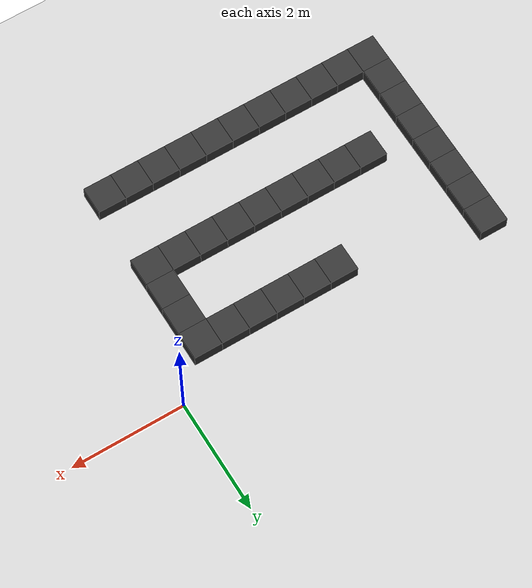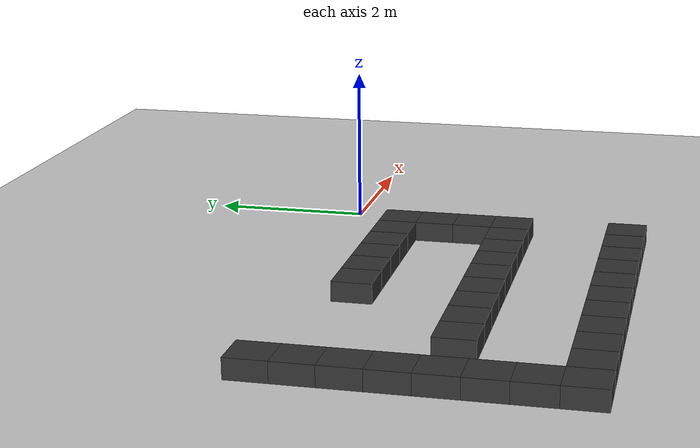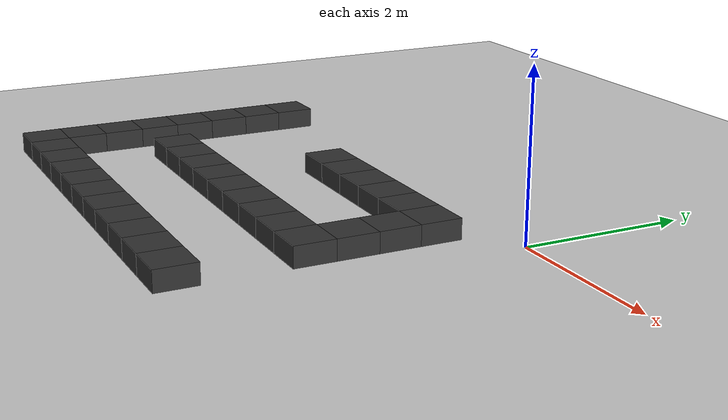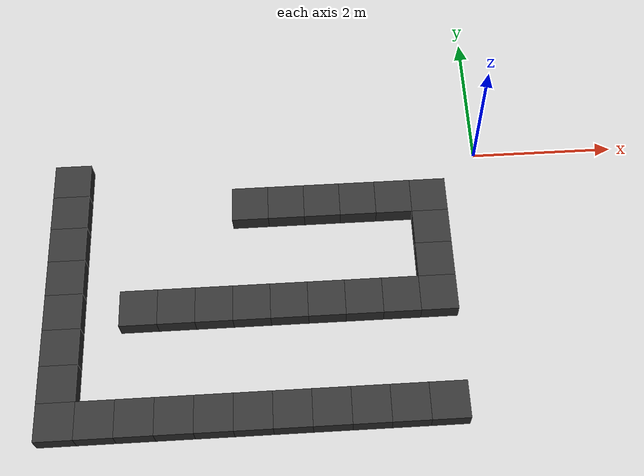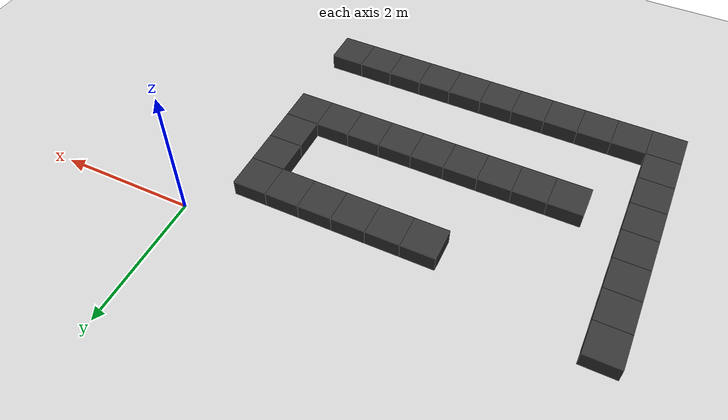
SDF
<sdf version="1.7">
 <world name="default">
  <model name="ground">
   <static>true</static>
   <link name="link">
    <collision name="col">
     <geometry><plane><normal>0 0 1</normal><size>200 200</size></plane></geometry>
    </collision>
    <visual name="vis">
     <geometry><plane><normal>0 0 1</normal><size>200 200</size></plane></geometry>
     <material>
      <ambient>0.25 0.25 0.25 1</ambient>
      <diffuse>0.80 0.80 0.80 1</diffuse>
      <specular>0.05 0.05 0.05 1</specular>
     </material>
    </visual>
   </link>
  </model>
  <model name="w_0_0">
   <static>true</static>
   <pose>-5.750 -3.750 0.125 0 0 0</pose>
   <link name="link">
    <collision name="col"><geometry><box><size>0.500 0.500 0.250</size></box></geometry></collision>
    <visual name="vis">
     <geometry><box><size>0.500 0.500 0.250</size></box></geometry>
     <material><ambient>0.2 0.2 0.2 1.0</ambient></material>
    </visual>
   </link>
  </model>
  <model name="w_0_1">
   <static>true</static>
   <pose>-5.250 -3.750 0.125 0 0 0</pose>
   <link name="link">
    <collision name="col"><geometry><box><size>0.500 0.500 0.250</size></box></geometry></collision>
    <visual name="vis">
     <geometry><box><size>0.500 0.500 0.250</size></box></geometry>
     <material><ambient>0.2 0.2 0.2 1.0</ambient></material>
    </visual>
   </link>
  </model>
  <model name="w_0_2">
   <static>true</static>
   <pose>-4.750 -3.750 0.125 0 0 0</pose>
   <link name="link">
    <collision name="col"><geometry><box><size>0.500 0.500 0.250</size></box></geometry></collision>
    <visual name="vis">
     <geometry><box><size>0.500 0.500 0.250</size></box></geometry>
     <material><ambient>0.2 0.2 0.2 1.0</ambient></material>
    </visual>
   </link>
  </model>
  <model name="w_0_3">
   <static>true</static>
   <pose>-4.250 -3.750 0.125 0 0 0</pose>
   <link name="link">
    <collision name="col"><geometry><box><size>0.500 0.500 0.250</size></box></geometry></collision>
    <visual name="vis">
     <geometry><box><size>0.500 0.500 0.250</size></box></geometry>
     <material><ambient>0.2 0.2 0.2 1.0</ambient></material>
    </visual>
   </link>
  </model>
  <model name="w_0_4">
   <static>true</static>
   <pose>-3.750 -3.750 0.125 0 0 0</pose>
   <link name="link">
    <collision name="col"><geometry><box><size>0.500 0.500 0.250</size></box></geometry></collision>
    <visual name="vis">
     <geometry><box><size>0.500 0.500 0.250</size></box></geometry>
     <material><ambient>0.2 0.2 0.2 1.0</ambient></material>
    </visual>
   </link>
  </model>
  <model name="w_0_5">
   <static>true</static>
   <pose>-3.250 -3.750 0.125 0 0 0</pose>
   <link name="link">
    <collision name="col"><geometry><box><size>0.500 0.500 0.250</size></box></geometry></collision>
    <visual name="vis">
     <geometry><box><size>0.500 0.500 0.250</size></box></geometry>
     <material><ambient>0.2 0.2 0.2 1.0</ambient></material>
    </visual>
   </link>
  </model>
  <model name="w_0_6">
   <static>true</static>
   <pose>-2.750 -3.750 0.125 0 0 0</pose>
   <link name="link">
    <collision name="col"><geometry><box><size>0.500 0.500 0.250</size></box></geometry></collision>
    <visual name="vis">
     <geometry><box><size>0.500 0.500 0.250</size></box></geometry>
     <material><ambient>0.2 0.2 0.2 1.0</ambient></material>
    </visual>
   </link>
  </model>
  <model name="w_0_7">
   <static>true</static>
   <pose>-2.250 -3.750 0.125 0 0 0</pose>
   <link name="link">
    <collision name="col"><geometry><box><size>0.500 0.500 0.250</size></box></geometry></collision>
    <visual name="vis">
     <geometry><box><size>0.500 0.500 0.250</size></box></geometry>
     <material><ambient>0.2 0.2 0.2 1.0</ambient></material>
    </visual>
   </link>
  </model>
  <model name="w_0_8">
   <static>true</static>
   <pose>-1.750 -3.750 0.125 0 0 0</pose>
   <link name="link">
    <collision name="col"><geometry><box><size>0.500 0.500 0.250</size></box></geometry></collision>
    <visual name="vis">
     <geometry><box><size>0.500 0.500 0.250</size></box></geometry>
     <material><ambient>0.2 0.2 0.2 1.0</ambient></material>
    </visual>
   </link>
  </model>
  <model name="w_0_9">
   <static>true</static>
   <pose>-1.250 -3.750 0.125 0 0 0</pose>
   <link name="link">
    <collision name="col"><geometry><box><size>0.500 0.500 0.250</size></box></geometry></collision>
    <visual name="vis">
     <geometry><box><size>0.500 0.500 0.250</size></box></geometry>
     <material><ambient>0.2 0.2 0.2 1.0</ambient></material>
    </visual>
   </link>
  </model>
  <model name="w_0_10">
   <static>true</static>
   <pose>-0.750 -3.750 0.125 0 0 0</pose>
   <link name="link">
    <collision name="col"><geometry><box><size>0.500 0.500 0.250</size></box></geometry></collision>
    <visual name="vis">
     <geometry><box><size>0.500 0.500 0.250</size></box></geometry>
     <material><ambient>0.2 0.2 0.2 1.0</ambient></material>
    </visual>
   </link>
  </model>
  <model name="w_1_0">
   <static>true</static>
   <pose>-5.750 -3.250 0.125 0 0 0</pose>
   <link name="link">
    <collision name="col"><geometry><box><size>0.500 0.500 0.250</size></box></geometry></collision>
    <visual name="vis">
     <geometry><box><size>0.500 0.500 0.250</size></box></geometry>
     <material><ambient>0.2 0.2 0.2 1.0</ambient></material>
    </visual>
   </link>
  </model>
  <model name="w_2_0">
   <static>true</static>
   <pose>-5.750 -2.750 0.125 0 0 0</pose>
   <link name="link">
    <collision name="col"><geometry><box><size>0.500 0.500 0.250</size></box></geometry></collision>
    <visual name="vis">
     <geometry><box><size>0.500 0.500 0.250</size></box></geometry>
     <material><ambient>0.2 0.2 0.2 1.0</ambient></material>
    </visual>
   </link>
  </model>
  <model name="w_3_0">
   <static>true</static>
   <pose>-5.750 -2.250 0.125 0 0 0</pose>
   <link name="link">
    <collision name="col"><geometry><box><size>0.500 0.500 0.250</size></box></geometry></collision>
    <visual name="vis">
     <geometry><box><size>0.500 0.500 0.250</size></box></geometry>
     <material><ambient>0.2 0.2 0.2 1.0</ambient></material>
    </visual>
   </link>
  </model>
  <model name="w_3_2">
   <static>true</static>
   <pose>-4.750 -2.250 0.125 0 0 0</pose>
   <link name="link">
    <collision name="col"><geometry><box><size>0.500 0.500 0.250</size></box></geometry></collision>
    <visual name="vis">
     <geometry><box><size>0.500 0.500 0.250</size></box></geometry>
     <material><ambient>0.2 0.2 0.2 1.0</ambient></material>
    </visual>
   </link>
  </model>
  <model name="w_3_3">
   <static>true</static>
   <pose>-4.250 -2.250 0.125 0 0 0</pose>
   <link name="link">
    <collision name="col"><geometry><box><size>0.500 0.500 0.250</size></box></geometry></collision>
    <visual name="vis">
     <geometry><box><size>0.500 0.500 0.250</size></box></geometry>
     <material><ambient>0.2 0.2 0.2 1.0</ambient></material>
    </visual>
   </link>
  </model>
  <model name="w_3_4">
   <static>true</static>
   <pose>-3.750 -2.250 0.125 0 0 0</pose>
   <link name="link">
    <collision name="col"><geometry><box><size>0.500 0.500 0.250</size></box></geometry></collision>
    <visual name="vis">
     <geometry><box><size>0.500 0.500 0.250</size></box></geometry>
     <material><ambient>0.2 0.2 0.2 1.0</ambient></material>
    </visual>
   </link>
  </model>
  <model name="w_3_5">
   <static>true</static>
   <pose>-3.250 -2.250 0.125 0 0 0</pose>
   <link name="link">
    <collision name="col"><geometry><box><size>0.500 0.500 0.250</size></box></geometry></collision>
    <visual name="vis">
     <geometry><box><size>0.500 0.500 0.250</size></box></geometry>
     <material><ambient>0.2 0.2 0.2 1.0</ambient></material>
    </visual>
   </link>
  </model>
  <model name="w_3_6">
   <static>true</static>
   <pose>-2.750 -2.250 0.125 0 0 0</pose>
   <link name="link">
    <collision name="col"><geometry><box><size>0.500 0.500 0.250</size></box></geometry></collision>
    <visual name="vis">
     <geometry><box><size>0.500 0.500 0.250</size></box></geometry>
     <material><ambient>0.2 0.2 0.2 1.0</ambient></material>
    </visual>
   </link>
  </model>
  <model name="w_3_7">
   <static>true</static>
   <pose>-2.250 -2.250 0.125 0 0 0</pose>
   <link name="link">
    <collision name="col"><geometry><box><size>0.500 0.500 0.250</size></box></geometry></collision>
    <visual name="vis">
     <geometry><box><size>0.500 0.500 0.250</size></box></geometry>
     <material><ambient>0.2 0.2 0.2 1.0</ambient></material>
    </visual>
   </link>
  </model>
  <model name="w_3_8">
   <static>true</static>
   <pose>-1.750 -2.250 0.125 0 0 0</pose>
   <link name="link">
    <collision name="col"><geometry><box><size>0.500 0.500 0.250</size></box></geometry></collision>
    <visual name="vis">
     <geometry><box><size>0.500 0.500 0.250</size></box></geometry>
     <material><ambient>0.2 0.2 0.2 1.0</ambient></material>
    </visual>
   </link>
  </model>
  <model name="w_3_9">
   <static>true</static>
   <pose>-1.250 -2.250 0.125 0 0 0</pose>
   <link name="link">
    <collision name="col"><geometry><box><size>0.500 0.500 0.250</size></box></geometry></collision>
    <visual name="vis">
     <geometry><box><size>0.500 0.500 0.250</size></box></geometry>
     <material><ambient>0.2 0.2 0.2 1.0</ambient></material>
    </visual>
   </link>
  </model>
  <model name="w_3_10">
   <static>true</static>
   <pose>-0.750 -2.250 0.125 0 0 0</pose>
   <link name="link">
    <collision name="col"><geometry><box><size>0.500 0.500 0.250</size></box></geometry></collision>
    <visual name="vis">
     <geometry><box><size>0.500 0.500 0.250</size></box></geometry>
     <material><ambient>0.2 0.2 0.2 1.0</ambient></material>
    </visual>
   </link>
  </model>
  <model name="w_4_0">
   <static>true</static>
   <pose>-5.750 -1.750 0.125 0 0 0</pose>
   <link name="link">
    <collision name="col"><geometry><box><size>0.500 0.500 0.250</size></box></geometry></collision>
    <visual name="vis">
     <geometry><box><size>0.500 0.500 0.250</size></box></geometry>
     <material><ambient>0.2 0.2 0.2 1.0</ambient></material>
    </visual>
   </link>
  </model>
  <model name="w_4_10">
   <static>true</static>
   <pose>-0.750 -1.750 0.125 0 0 0</pose>
   <link name="link">
    <collision name="col"><geometry><box><size>0.500 0.500 0.250</size></box></geometry></collision>
    <visual name="vis">
     <geometry><box><size>0.500 0.500 0.250</size></box></geometry>
     <material><ambient>0.2 0.2 0.2 1.0</ambient></material>
    </visual>
   </link>
  </model>
  <model name="w_5_0">
   <static>true</static>
   <pose>-5.750 -1.250 0.125 0 0 0</pose>
   <link name="link">
    <collision name="col"><geometry><box><size>0.500 0.500 0.250</size></box></geometry></collision>
    <visual name="vis">
     <geometry><box><size>0.500 0.500 0.250</size></box></geometry>
     <material><ambient>0.2 0.2 0.2 1.0</ambient></material>
    </visual>
   </link>
  </model>
  <model name="w_5_10">
   <static>true</static>
   <pose>-0.750 -1.250 0.125 0 0 0</pose>
   <link name="link">
    <collision name="col"><geometry><box><size>0.500 0.500 0.250</size></box></geometry></collision>
    <visual name="vis">
     <geometry><box><size>0.500 0.500 0.250</size></box></geometry>
     <material><ambient>0.2 0.2 0.2 1.0</ambient></material>
    </visual>
   </link>
  </model>
  <model name="w_6_0">
   <static>true</static>
   <pose>-5.750 -0.750 0.125 0 0 0</pose>
   <link name="link">
    <collision name="col"><geometry><box><size>0.500 0.500 0.250</size></box></geometry></collision>
    <visual name="vis">
     <geometry><box><size>0.500 0.500 0.250</size></box></geometry>
     <material><ambient>0.2 0.2 0.2 1.0</ambient></material>
    </visual>
   </link>
  </model>
  <model name="w_6_5">
   <static>true</static>
   <pose>-3.250 -0.750 0.125 0 0 0</pose>
   <link name="link">
    <collision name="col"><geometry><box><size>0.500 0.500 0.250</size></box></geometry></collision>
    <visual name="vis">
     <geometry><box><size>0.500 0.500 0.250</size></box></geometry>
     <material><ambient>0.2 0.2 0.2 1.0</ambient></material>
    </visual>
   </link>
  </model>
  <model name="w_6_6">
   <static>true</static>
   <pose>-2.750 -0.750 0.125 0 0 0</pose>
   <link name="link">
    <collision name="col"><geometry><box><size>0.500 0.500 0.250</size></box></geometry></collision>
    <visual name="vis">
     <geometry><box><size>0.500 0.500 0.250</size></box></geometry>
     <material><ambient>0.2 0.2 0.2 1.0</ambient></material>
    </visual>
   </link>
  </model>
  <model name="w_6_7">
   <static>true</static>
   <pose>-2.250 -0.750 0.125 0 0 0</pose>
   <link name="link">
    <collision name="col"><geometry><box><size>0.500 0.500 0.250</size></box></geometry></collision>
    <visual name="vis">
     <geometry><box><size>0.500 0.500 0.250</size></box></geometry>
     <material><ambient>0.2 0.2 0.2 1.0</ambient></material>
    </visual>
   </link>
  </model>
  <model name="w_6_8">
   <static>true</static>
   <pose>-1.750 -0.750 0.125 0 0 0</pose>
   <link name="link">
    <collision name="col"><geometry><box><size>0.500 0.500 0.250</size></box></geometry></collision>
    <visual name="vis">
     <geometry><box><size>0.500 0.500 0.250</size></box></geometry>
     <material><ambient>0.2 0.2 0.2 1.0</ambient></material>
    </visual>
   </link>
  </model>
  <model name="w_6_9">
   <static>true</static>
   <pose>-1.250 -0.750 0.125 0 0 0</pose>
   <link name="link">
    <collision name="col"><geometry><box><size>0.500 0.500 0.250</size></box></geometry></collision>
    <visual name="vis">
     <geometry><box><size>0.500 0.500 0.250</size></box></geometry>
     <material><ambient>0.2 0.2 0.2 1.0</ambient></material>
    </visual>
   </link>
  </model>
  <model name="w_6_10">
   <static>true</static>
   <pose>-0.750 -0.750 0.125 0 0 0</pose>
   <link name="link">
    <collision name="col"><geometry><box><size>0.500 0.500 0.250</size></box></geometry></collision>
    <visual name="vis">
     <geometry><box><size>0.500 0.500 0.250</size></box></geometry>
     <material><ambient>0.2 0.2 0.2 1.0</ambient></material>
    </visual>
   </link>
  </model>
  <model name="w_7_0">
   <static>true</static>
   <pose>-5.750 -0.250 0.125 0 0 0</pose>
   <link name="link">
    <collision name="col"><geometry><box><size>0.500 0.500 0.250</size></box></geometry></collision>
    <visual name="vis">
     <geometry><box><size>0.500 0.500 0.250</size></box></geometry>
     <material><ambient>0.2 0.2 0.2 1.0</ambient></material>
    </visual>
   </link>
  </model>
 </world>
</sdf>
